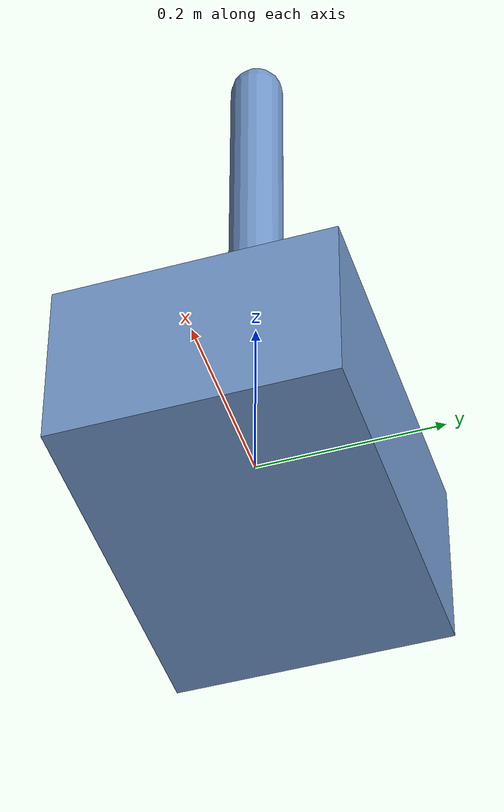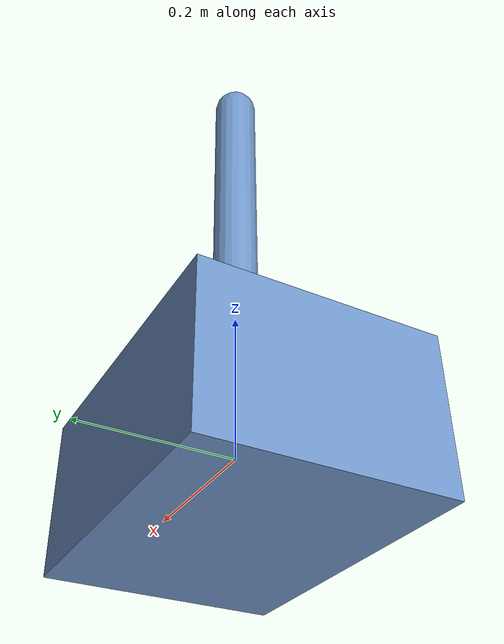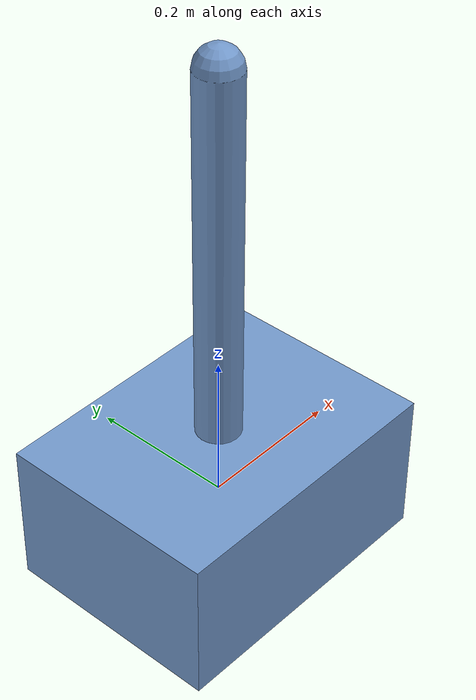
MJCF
<mujoco model="cartpole">
  <compiler coordinate="local" angle="radian"/>
  <option timestep="0.01" integrator="RK4"/>

  <default>
    <geom rgba="0.45 0.6 0.8 1"/>
  </default>

  <worldbody>
    <light directional="true" pos="-0.5 0.5 3" dir="0 0 -1"/>

    <body name="cart" pos="0 0 0">
      <joint name="slider" type="slide" axis="1 0 0" range="-2.5 2.5" limited="true" damping="0.5"/>
      <geom name="cart" type="box" size="0.2 0.15 0.1" mass="1.0"/>

      <body name="pole" pos="0 0 0">
        <joint name="hinge" type="hinge" axis="0 1 0" damping="0.05"/>
        <geom name="pole" type="capsule" fromto="0 0 0 0 0 0.6" size="0.03" mass="0.1"/>
      </body>
    </body>
  </worldbody>

  <actuator>
    <motor name="slide_motor" joint="slider" gear="10" ctrlrange="-1 1" ctrllimited="true"/>
  </actuator>
</mujoco>
